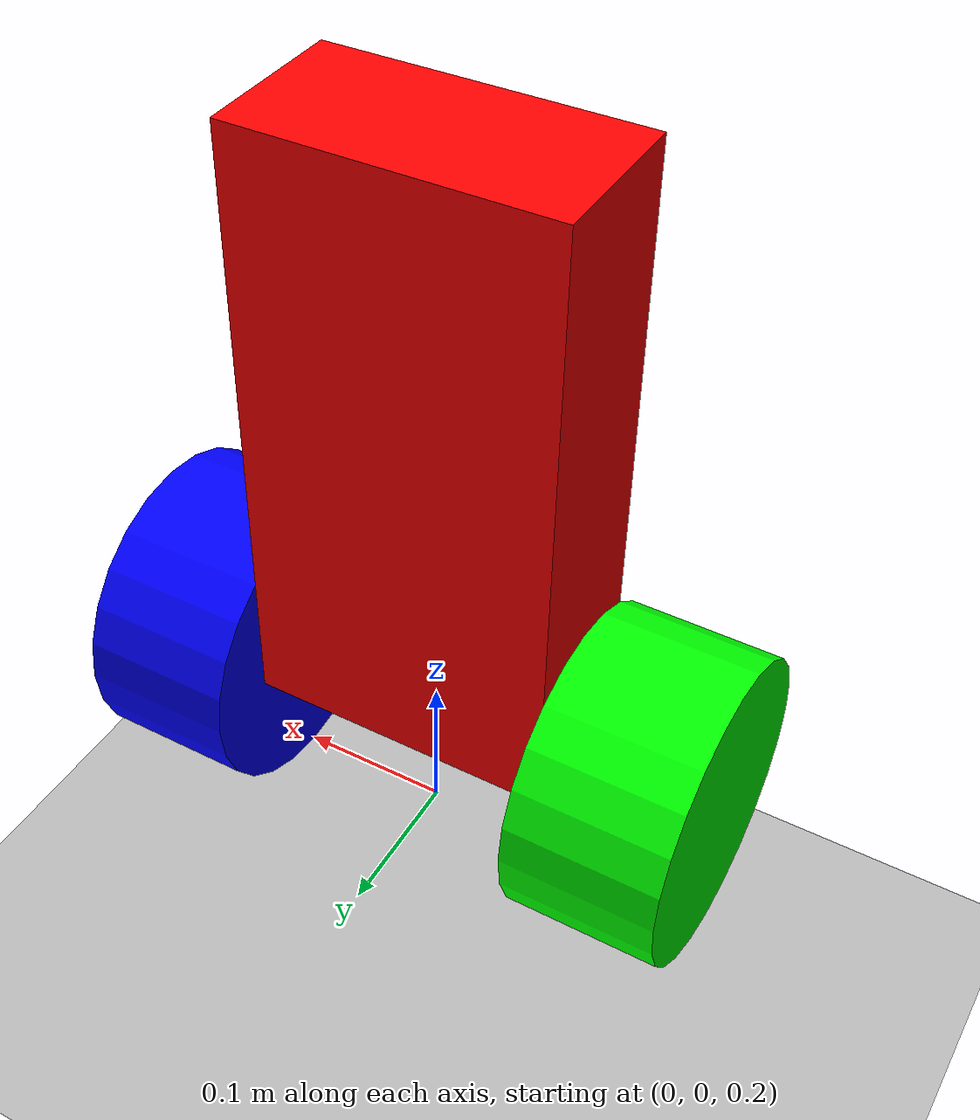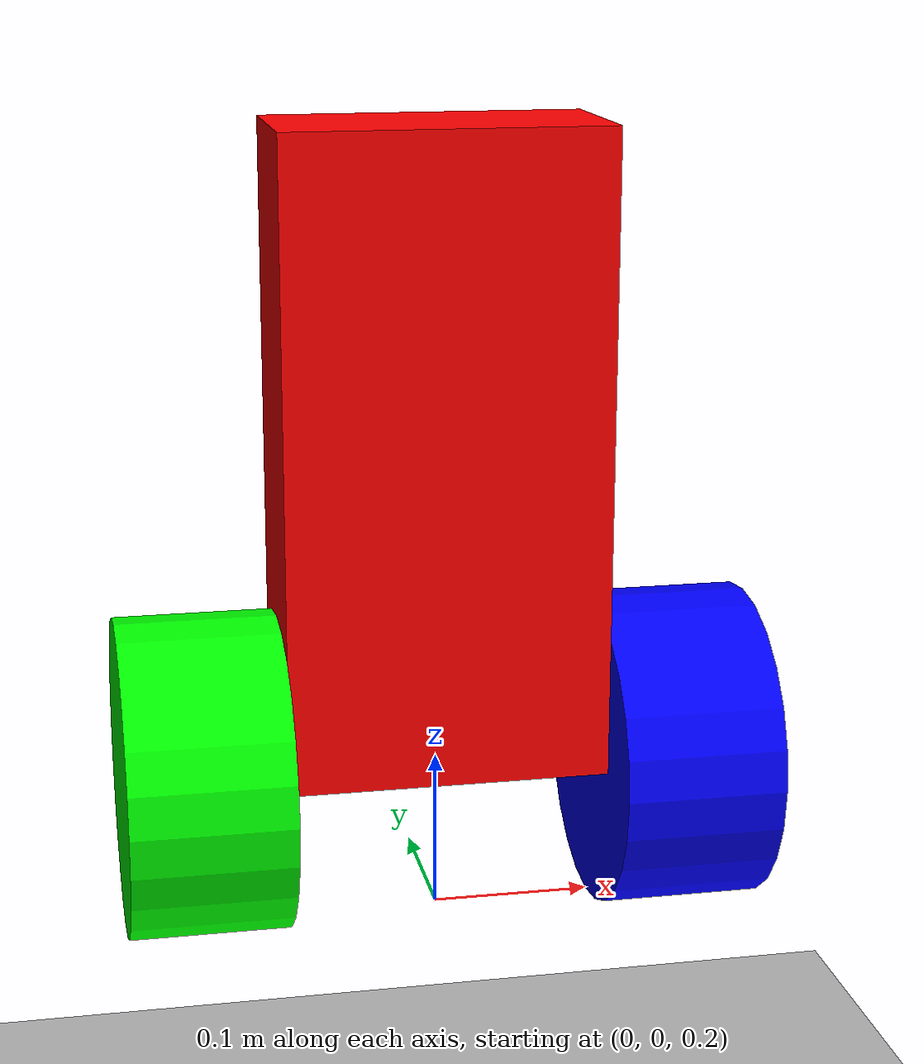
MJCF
<mujoco model="perfbalanced">
    <compiler inertiafromgeom="true"/>
    <option timestep="0.002" gravity="0 0 -9.81"/>

    <worldbody>
        <!-- Floor -->
        <body name="floor" pos="0 0 0" >
            <geom type="plane" size="0 0 0.1" rgba="0.7 0.7 0.7 1"/>
            <light/>
        </body>
        <!-- Base Body -->
        <body name="base" pos="0 0 0.5">
            <geom type="box" size="0.1 0.05 0.2" rgba="1 0 0 1"/>
            <joint name="base_joint" type="free"/>
            <light/>

            <!-- Left Wheel -->
            <body name="left_wheel" pos="-0.15 0 -0.2" euler="0 90 0">
                <joint name="left_wheel_joint" type="hinge" axis="0 0 1"/>
                <geom type="cylinder" size="0.1 0.05" rgba="0 1 0 1"/>
                <light/>
            </body>
            <!-- Right Wheel -->
            <body name="right_wheel" pos="0.15 0 -0.2" euler="0 90 0">
                <joint name="right_wheel_joint" type="hinge" axis="0 0 1"/>
                <geom type="cylinder" size="0.1 0.05" rgba="0 0 1 1"/>
                <light/>
            </body>
        </body>
    </worldbody>

    <!-- Actuator -->
    <actuator>
        <motor joint="left_wheel_joint" ctrlrange="-100 100"/>
    </actuator>
    <actuator>
        <motor joint="right_wheel_joint" ctrlrange="-100 100"/>
    </actuator>
</mujoco>
